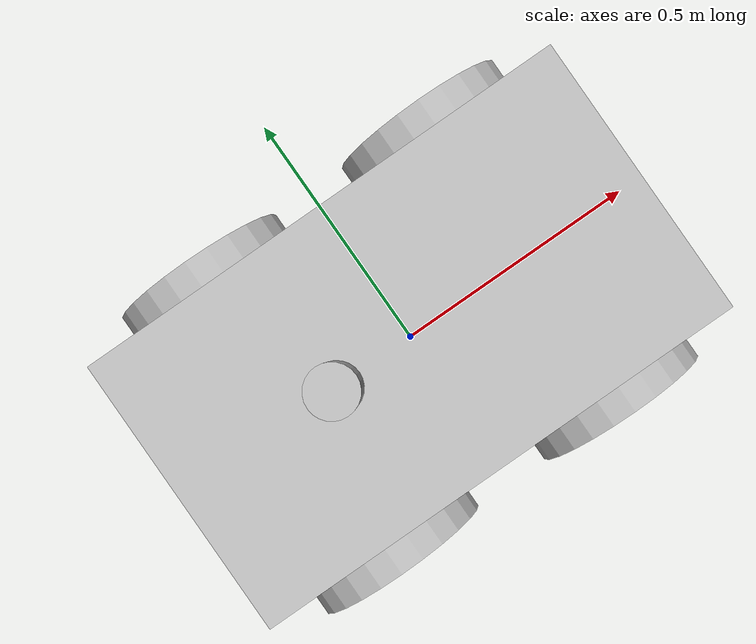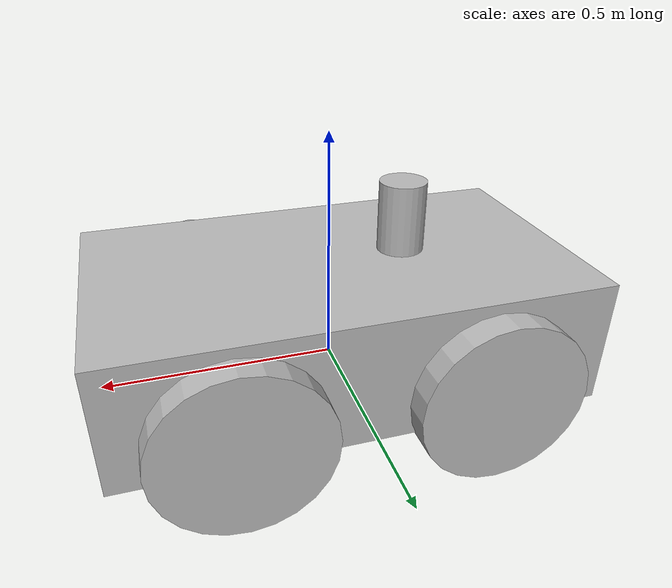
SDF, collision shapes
<sdf version='1.7'>
    <model name='husky'>
      <link name='base_link'>
        <collision name='collision'>
          <pose>0 0 0.1 0 -0 0</pose>
          <geometry>
            <box>
              <size>1.0074 0.5709 0.2675</size>
            </box>
          </geometry>
          <max_contacts>10</max_contacts>
          <surface>
            <contact>
              <ode/>
            </contact>
            <bounce/>
            <friction>
              <torsional>
                <ode/>
              </torsional>
              <ode/>
            </friction>
          </surface>
        </collision>
        <inertial>
          <mass>33.855</mass>
          <pose>-0.085613 -0.00084 0.238145 0 -0 0</pose>
          <inertia>
            <ixx>2.2343</ixx>
            <ixy>-0.023642</ixy>
            <ixz>0.275174</ixz>
            <iyy>3.42518</iyy>
            <iyz>0.00239624</iyz>
            <izz>2.1241</izz>
          </inertia>
        </inertial>
        <visual name='body'>
          <pose>0 0 0 0 -0 0</pose>
          <geometry>
            <mesh>
              <uri>model://husky_model/meshes/body.dae</uri>
            </mesh>
          </geometry>
        </visual>
        <self_collide>0</self_collide>
        <enable_wind>0</enable_wind>
        <kinematic>0</kinematic>
      </link>
      <link name='back_left_wheel'>
        <pose>-0.256 0.285475 0.035 0 -0 0</pose>
        <inertial>
          <mass>2.6357</mass>
          <pose>0 0 0 0 -0 0</pose>
          <inertia>
            <ixx>0.0246688</ixx>
            <ixy>0</ixy>
            <ixz>0</ixz>
            <iyy>0.0246688</iyy>
            <iyz>0</iyz>
            <izz>0.0441058</izz>
          </inertia>
        </inertial>
        <collision name='back_left_wheel_collision'>
          <pose>0 0 0 -1.5707 0 0</pose>
          <geometry>
            <cylinder>
              <radius>0.17775</radius>
              <length>0.1143</length>
            </cylinder>
          </geometry>
          <surface>
            <friction>
              <ode>
                <mu>100000</mu>
                <mu2>100000</mu2>
                <slip1>0</slip1>
                <slip2>0</slip2>
              </ode>
              <torsional>
                <ode/>
              </torsional>
            </friction>
            <contact>
              <ode/>
            </contact>
            <bounce/>
          </surface>
          <max_contacts>10</max_contacts>
        </collision>
        <visual name='back_left_wheel'>
          <pose>0 0 0 0 -0 0</pose>
          <geometry>
            <mesh>
              <uri>model://husky_model/meshes/wheel.dae</uri>
            </mesh>
          </geometry>
        </visual>
        <self_collide>0</self_collide>
        <enable_wind>0</enable_wind>
        <kinematic>0</kinematic>
      </link>
      <joint name='back_left_joint' type='revolute'>
        <sensor name='back_left_sensor' type='force_torque'>
          <force_torque/>
        </sensor>
        <parent>base_link</parent>
        <child>back_left_wheel</child>
        <axis>
          <xyz expressed_in='__model__'>0 1 0</xyz>
          <limit>
            <lower>-1e+16</lower>
            <upper>1e+16</upper>
          </limit>
          <dynamics>
            <spring_reference>0</spring_reference>
            <spring_stiffness>0</spring_stiffness>
          </dynamics>
        </axis>
        <physics>
          <provide_feedback>1</provide_feedback>
          <ode>
            <limit>
              <cfm>0</cfm>
              <erp>0.9</erp>
            </limit>
          </ode>
        </physics>
      </joint>
      <link name='back_right_wheel'>
        <pose>-0.256 -0.285475 0.035 0 -0 0</pose>
        <inertial>
          <mass>2.6357</mass>
          <pose>0 0 0 0 -0 0</pose>
          <inertia>
            <ixx>0.0246688</ixx>
            <ixy>0</ixy>
            <ixz>0</ixz>
            <iyy>0.0246688</iyy>
            <iyz>0</iyz>
            <izz>0.0441058</izz>
          </inertia>
        </inertial>
        <collision name='back_right_wheel_collision'>
          <pose>0 0 0 -1.5707 0 0</pose>
          <geometry>
            <cylinder>
              <radius>0.17775</radius>
              <length>0.1143</length>
            </cylinder>
          </geometry>
          <surface>
            <friction>
              <ode>
                <mu>100000</mu>
                <mu2>100000</mu2>
                <slip1>0</slip1>
                <slip2>0</slip2>
              </ode>
              <torsional>
                <ode/>
              </torsional>
            </friction>
            <contact>
              <ode/>
            </contact>
            <bounce/>
          </surface>
          <max_contacts>10</max_contacts>
        </collision>
        <visual name='back_right_wheel'>
          <pose>0 0 0 -3.14159 0 0</pose>
          <geometry>
            <mesh>
              <uri>model://husky_model/meshes/wheel.dae</uri>
            </mesh>
          </geometry>
        </visual>
        <self_collide>0</self_collide>
        <enable_wind>0</enable_wind>
        <kinematic>0</kinematic>
      </link>
      <joint name='back_right_joint' type='revolute'>
        <sensor name='back_right_sensor' type='force_torque'>
          <force_torque/>
        </sensor>
        <parent>base_link</parent>
        <child>back_right_wheel</child>
        <axis>
          <xyz expressed_in='__model__'>0 1 0</xyz>
          <limit>
            <lower>-1e+16</lower>
            <upper>1e+16</upper>
          </limit>
          <dynamics>
            <spring_reference>0</spring_reference>
            <spring_stiffness>0</spring_stiffness>
          </dynamics>
        </axis>
        <physics>
          <provide_feedback>1</provide_feedback>
          <ode>
            <limit>
              <cfm>0</cfm>
              <erp>0.9</erp>
            </limit>
          </ode>
        </physics>
      </joint>
      <link name='front_left_wheel'>
        <pose>0.256 0.285475 0.035 0 -0 0</pose>
        <inertial>
          <mass>2.6357</mass>
          <pose>0 0 0 0 -0 0</pose>
          <inertia>
            <ixx>0.0246688</ixx>
            <ixy>0</ixy>
            <ixz>0</ixz>
            <iyy>0.0246688</iyy>
            <iyz>0</iyz>
            <izz>0.0441058</izz>
          </inertia>
        </inertial>
        <collision name='front_left_wheel_collision'>
          <pose>0 0 0 -1.5707 0 0</pose>
          <geometry>
            <cylinder>
              <radius>0.17775</radius>
              <length>0.1143</length>
            </cylinder>
          </geometry>
          <surface>
            <friction>
              <ode>
                <mu>100000</mu>
                <mu2>100000</mu2>
                <slip1>0</slip1>
                <slip2>0</slip2>
              </ode>
              <torsional>
                <ode/>
              </torsional>
            </friction>
            <contact>
              <ode/>
            </contact>
            <bounce/>
          </surface>
          <max_contacts>10</max_contacts>
        </collision>
        <visual name='front_left_wheel'>
          <pose>0 0 0 0 -0 0</pose>
          <geometry>
            <mesh>
              <uri>model://husky_model/meshes/wheel.dae</uri>
            </mesh>
          </geometry>
        </visual>
        <self_collide>0</self_collide>
        <enable_wind>0</enable_wind>
        <kinematic>0</kinematic>
      </link>
      <joint name='front_left_joint' type='revolute'>
        <sensor name='front_left_sensor' type='force_torque'>
          <force_torque/>
        </sensor>
        <parent>base_link</parent>
        <child>front_left_wheel</child>
        <axis>
          <xyz expressed_in='__model__'>0 1 0</xyz>
          <limit>
            <lower>-1e+16</lower>
            <upper>1e+16</upper>
          </limit>
          <dynamics>
            <spring_reference>0</spring_reference>
            <spring_stiffness>0</spring_stiffness>
          </dynamics>
        </axis>
        <physics>
          <provide_feedback>1</provide_feedback>
          <ode>
            <limit>
              <cfm>0</cfm>
              <erp>0.9</erp>
            </limit>
          </ode>
        </physics>
      </joint>
      <link name='front_right_wheel'>
        <pose>0.256 -0.285475 0.035 0 -0 0</pose>
        <inertial>
          <mass>2.6357</mass>
          <pose>0 0 0 0 -0 0</pose>
          <inertia>
            <ixx>0.0246688</ixx>
            <ixy>0</ixy>
            <ixz>0</ixz>
            <iyy>0.0246688</iyy>
            <iyz>0</iyz>
            <izz>0.0441058</izz>
          </inertia>
        </inertial>
        <collision name='front_right_wheel_collision'>
          <pose>0 0 0 -1.5707 0 0</pose>
          <geometry>
            <cylinder>
              <radius>0.17775</radius>
              <length>0.1143</length>
            </cylinder>
          </geometry>
          <surface>
            <friction>
              <ode>
                <mu>100000</mu>
                <mu2>100000</mu2>
                <slip1>0</slip1>
                <slip2>0</slip2>
              </ode>
              <torsional>
                <ode/>
              </torsional>
            </friction>
            <contact>
              <ode/>
            </contact>
            <bounce/>
          </surface>
          <max_contacts>10</max_contacts>
        </collision>
        <visual name='front_right_wheel'>
          <pose>0 0 0 -3.14159 0 0</pose>
          <geometry>
            <mesh>
              <uri>model://husky_model/meshes/wheel.dae</uri>
            </mesh>
          </geometry>
        </visual>
        <self_collide>0</self_collide>
        <enable_wind>0</enable_wind>
        <kinematic>0</kinematic>
      </link>
      <joint name='front_right_joint' type='revolute'>
        <sensor name='front_right_sensor' type='force_torque'>
          <force_torque/>
        </sensor>
        <parent>base_link</parent>
        <child>front_right_wheel</child>
        <axis>
          <xyz expressed_in='__model__'>0 1 0</xyz>
          <limit>
            <lower>-1e+16</lower>
            <upper>1e+16</upper>
          </limit>
          <dynamics>
            <spring_reference>0</spring_reference>
            <spring_stiffness>0</spring_stiffness>
          </dynamics>
        </axis>
        <physics>
          <provide_feedback>1</provide_feedback>
          <ode>
            <limit>
              <cfm>0</cfm>
              <erp>0.9</erp>
            </limit>
          </ode>
        </physics>
      </joint>
      <link name='eye_vision_camera'>
        <pose>-0.16 0 0.23 0 -0 0</pose>
        <collision name='eye_vision_camera_collision'>
          <pose>0 0 0.08 0 -0 0</pose>
          <geometry>
            <cylinder>
              <radius>0.05</radius>
              <length>0.15</length>
            </cylinder>
          </geometry>
          <max_contacts>10</max_contacts>
          <surface>
            <contact>
              <ode/>
            </contact>
            <bounce/>
            <friction>
              <torsional>
                <ode/>
              </torsional>
              <ode/>
            </friction>
          </surface>
        </collision>
        <visual name='eye_vision_camera'>
          <pose>0 0 0 1.5708 0 -1.5708</pose>
          <geometry>
            <mesh>
              <uri>model://husky_model/meshes/eye_vision_camera.dae</uri>
            </mesh>
          </geometry>
        </visual>
        <sensor name='camera' type='camera'>
          <pose>0 0 0.132 0 -0 0</pose>
          <topic>/husky/camera</topic>
          <camera>
            <horizontal_fov>1.57</horizontal_fov>
            <image>
              <width>320</width>
              <height>240</height>
            </image>
            <clip>
              <near>0.1</near>
              <far>100</far>
            </clip>
          </camera>
          <always_on>1</always_on>
          <update_rate>30</update_rate>
          <visualize>1</visualize>
          <plugin name='husky_camera' filename='NRPGazeboGrpcCameraControllerPlugin.so'/>
        </sensor>
        <self_collide>0</self_collide>
        <inertial>
          <pose>0 0 0 0 -0 0</pose>
          <inertia>
            <ixx>1</ixx>
            <ixy>0</ixy>
            <ixz>0</ixz>
            <iyy>1</iyy>
            <iyz>0</iyz>
            <izz>1</izz>
          </inertia>
          <mass>1</mass>
        </inertial>
        <enable_wind>0</enable_wind>
        <kinematic>0</kinematic>
      </link>
      <joint name='eye_vision_camera_joint' type='revolute'>
        <parent>base_link</parent>
        <child>eye_vision_camera</child>
        <axis>
          <xyz expressed_in='__model__'>0 0 1</xyz>
          <limit>
            <lower>0</lower>
            <upper>0</upper>
          </limit>
          <dynamics>
            <spring_reference>0</spring_reference>
            <spring_stiffness>0</spring_stiffness>
          </dynamics>
        </axis>
      </joint>
      <plugin name='husky_joints' filename='NRPGazeboGrpcJointControllerPlugin.so'>
        <back_left_joint   P='10' I='0' D='0' Type='velocity' Target='0' IMax='0' IMin='0'/>
        <back_right_joint  P='10' I='0' D='0' Type='velocity' Target='0' IMax='0' IMin='0'/>
        <front_left_joint  P='10' I='0' D='0' Type='velocity' Target='0' IMax='0' IMin='0'/>
        <front_right_joint P='10' I='0' D='0' Type='velocity' Target='0' IMax='0' IMin='0'/>
      </plugin>
      <!-- EBR2-32: expose every link as a datapack so drive_update.py
           can read husky::base_link's pose for the proximity check. -->
      <plugin name='husky_links' filename='NRPGazeboGrpcLinkControllerPlugin.so'/>
    </model>
</sdf>
